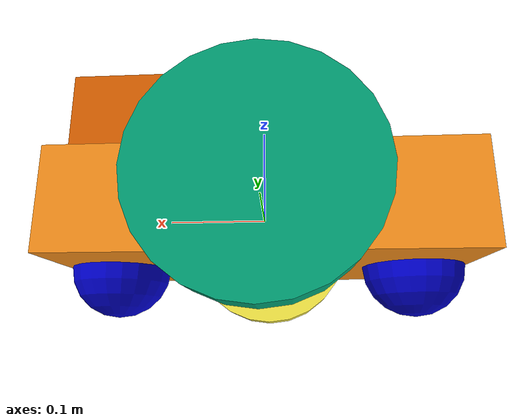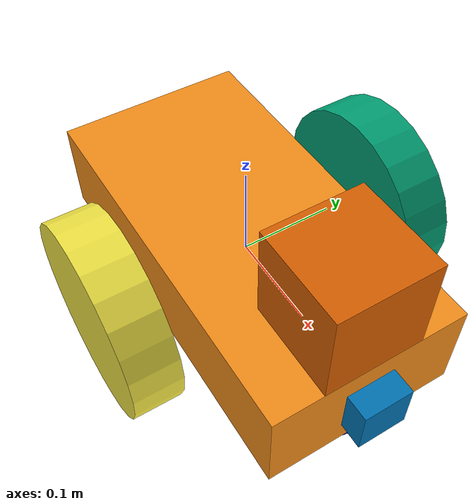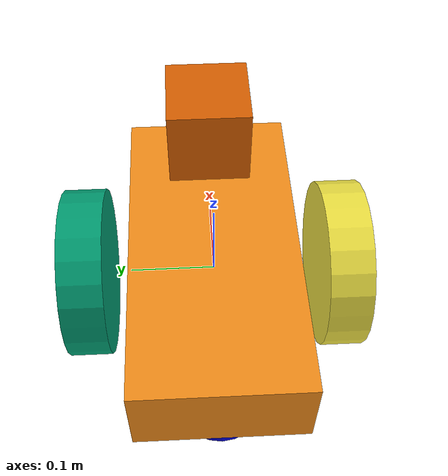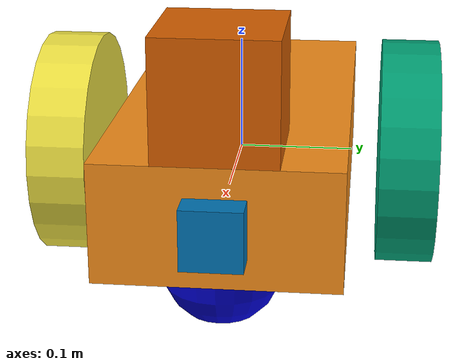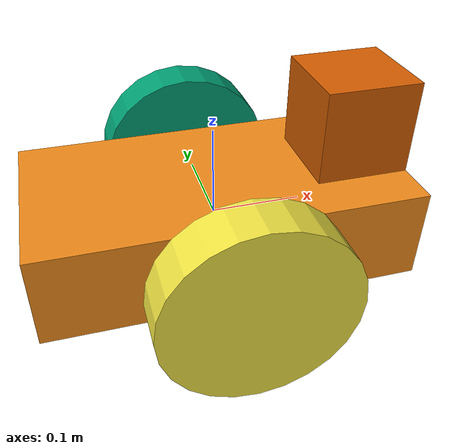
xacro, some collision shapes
<?xml version='1.0'?>

<robot name="wooden_robot" xmlns:xacro="http://www.ros.org/wiki/xacro">
  <material name="blue">
       <color rgba="0 0 0.8 1"/>
  </material>

  <material name="white">
        <color rgba="0 0 0 1"/>
  </material>

  <gazebo reference="chassis">
   <material>Gazebo/Blue</material>
  </gazebo>

  <xacro:include filename="$(find pet_robot)/urdf/pet_robot.gazebo" />
  <link name="robot_footprint"></link>

  <joint name="robot_footprint_joint" type="fixed">
    <origin xyz="0 0 0" rpy="0 0 0" />
    <parent link="robot_footprint"/>
    <child link="chassis" />
  </joint>

  <link name='chassis'>
    <pose>0 0 0.1 0 0 0</pose>

    <inertial>
      <mass value="15.0"/>
      <origin xyz="0.0 0 0" rpy=" 0 0 0"/>
      <inertia
          ixx="0.1" ixy="0" ixz="0"
          iyy="0.1" iyz="0"
          izz="0.1"
      />
    </inertial>

    <collision name='collision'>
      <origin xyz="0 0 0" rpy=" 0 0 0"/>
      <geometry>
        <box size=".4 .2 .1"/>
      </geometry>
    </collision>

    <visual name='chassis_visual'>
      <origin xyz="0 0 0" rpy=" 0 0 0"/>
      <geometry>
        <box size=".4 .2 .1"/>
      </geometry>
      <material name="orange"/>
    </visual>

    <collision name='back_caster_collision'>
      <origin xyz="-0.15 0 -0.05" rpy=" 0 0 0"/>
      <geometry>
        <sphere radius="0.0499"/>
      </geometry>

    </collision>

    <visual name='back_caster_visual'>
      <origin xyz="-0.15 0 -0.05" rpy=" 0 0 0"/>
      <geometry>
        <sphere radius="0.05"/>
      </geometry>
      <material name="blue"/>
    </visual>

    <collision name='front_caster_collision'>
      <origin xyz="0.15 0 -0.05" rpy=" 0 0 0"/>
      <geometry>
        <sphere radius="0.0499"/>
      </geometry>
    </collision>

    <visual name='front_caster_visual'>
      <origin xyz="0.15 0 -0.05" rpy=" 0 0 0"/>
      <geometry>
        <sphere radius="0.05"/>
      </geometry>
      <material name="blue"/>
    </visual>

  </link>

  <link name='left_wheel'>

    <inertial>
      <mass value="5.0"/>
      <origin xyz="0 0 0 " rpy=" 0 1.5707 1.5707"/>
      <inertia
          ixx="0.1" ixy="0" ixz="0"
          iyy="0.1" iyz="0"
          izz="0.1"
      />
    </inertial>

    <collision name='left_wheel_collision'>
      <origin xyz="0 0 0 " rpy=" 0 1.5707 1.5707"/>
      <geometry>
        <cylinder radius="0.1" length="0.05"/>
      </geometry>
    </collision>

    <visual name='left_wheel_wheel_visual'>
      <origin xyz="0 0 0 " rpy=" 0 1.5707 1.5707"/>
      <geometry>
        <cylinder radius="0.1" length="0.05"/>
      </geometry>
    </visual>
    <material name="blue"/>
  </link>

<link name='right_wheel'>

    <inertial>
      <mass value="5.0"/>
      <origin xyz="0 0 0 " rpy=" 0 1.5707 1.5707"/>
      <inertia
          ixx="0.1" ixy="0" ixz="0"
          iyy="0.1" iyz="0"
          izz="0.1"
      />
    </inertial>

    <collision name='right_wheel_collision'>
      <origin xyz="0 0 0 " rpy=" 0 1.5707 1.5707"/>
      <geometry>
        <cylinder radius="0.1" length="0.05"/>
      </geometry>
    </collision>

    <visual name='right_wheel_wheel_visual'>
      <origin xyz="0 0 0 " rpy=" 0 1.5707 1.5707"/>
      <geometry>
        <cylinder radius="0.1" length="0.05"/>
      </geometry>
    </visual>
    <material name="blue"/>
  </link>

  <link name='camera'>

    <inertial>
      <mass value="0.1"/>
      <origin xyz="0.05 0.05 0.05 " rpy=" 0 0 0"/>
      <inertia
          ixx="1e-6" ixy="0" ixz="0"
          iyy="1e-6" iyz="0"
          izz="1e-6"
      />
    </inertial>

    <collision name='camera_collision'>
      <origin xyz="0 0 0 " rpy=" 0 0 0"/>
      <geometry>
        <box size="0.05 0.05 0.05" />
      </geometry>
    </collision>

    <visual name='camera_visual'>
      <origin xyz="0 0 0 " rpy=" 0 0 0"/>
      <geometry>
        <box size="0.05 0.05 0.05" />
      </geometry>/odom

    </visual>
  </link>

  <link name='hokuyo'>

    <inertial>
      <mass value="1e-5"/>
      <origin xyz="0 0 0 " rpy=" 0 0 0"/>
      <inertia
          ixx="1e-6" ixy="0" ixz="0"
          iyy="1e-6" iyz="0"
          izz="1e-6"
      />
    </inertial>

    <collision name='hokuyo_collision'>
      <origin xyz="0 0 0 " rpy=" 0 0 0"/>
      <geometry>
        <box size="0.1 0.1 0.1" />
      </geometry>
    </collision>

    <visual name='hokuyo_visual' >
      <origin xyz="0 0 0 " rpy=" 0 0 0"/>

      <geometry>
        <mesh filename="package://pet_robot/meshes/hokuyo.dae"/>
      </geometry>
    </visual>
  </link>
  <link name='camera_link_optical'>
<inertial>
      <mass value="0.1"/>
      <origin xyz="0.05 0.05 0.05 " rpy=" 0 0 0"/>
      <inertia
          ixx="1e-6" ixy="0" ixz="0"
          iyy="1e-6" iyz="0"
          izz="1e-6"
      />
    </inertial>

    <collision name='camera_collision'>
      <origin xyz="0 0 0 " rpy=" 0 0 0"/>
      <geometry>
        <box size="0.05 0.05 0.05" />
      </geometry>
    </collision>

    <visual name='camera_visual'>
      <origin xyz="0 0 0 " rpy=" 0 0 0"/>
      <geometry>
        <box size="0.05 0.05 0.05" />
      </geometry>/odom

    </visual>
  </link>

   <joint type="continuous" name="left_wheel_hinge">
    <origin xyz="0 0.15 0" rpy="0 0 0"/>
    <child link="left_wheel"/>
    <parent link="chassis"/>
    <axis xyz="0 1 0" rpy="0 0 0"/>
    <limit effort="10000" velocity="1000"/>
    <dynamics damping="1.0" friction="1.0"/>
  </joint>

   <joint type="continuous" name="right_wheel_hinge">
    <origin xyz="0 -0.15 0" rpy="0 0 0"/>
    <child link="right_wheel"/>
    <parent link="chassis"/>
    <axis xyz="0 1 0" rpy="0 0 0"/>
    <limit effort="10000" velocity="1000"/>
    <dynamics damping="1.0" friction="1.0"/>
  </joint>

  <joint type="fixed" name="camera_joint">
    <origin xyz="0.2 0 0" rpy="0 0 0"/>
    <child link="camera"/>
    <parent link="chassis"/>
    <axis xyz="0 1 0" rpy="0 0 0"/>
  </joint>

  <joint type="fixed" name="hokuyo_joint">
    <origin xyz="0.15 0 0.1" rpy="0 0 0"/>
    <child link="hokuyo"/>
    <parent link="chassis"/>
    <axis xyz="0 1 0" rpy="0 0 0"/>
  </joint>

  <joint type="fixed" name="camera_optical_joint">
    <origin xyz="0 0 0" rpy="0 0 0"/>
    <child link="camera_link_optical"/>
    <parent link="chassis"/>
  </joint>

</robot>
